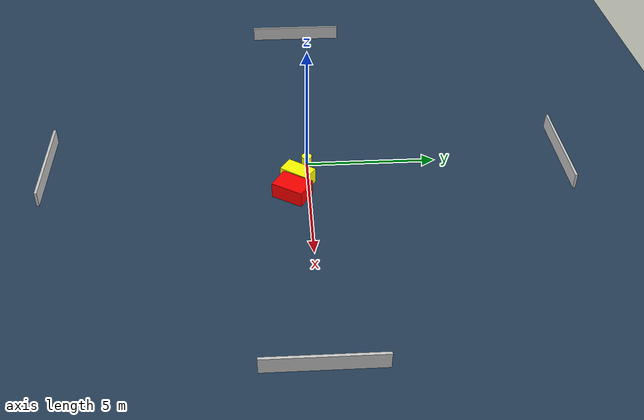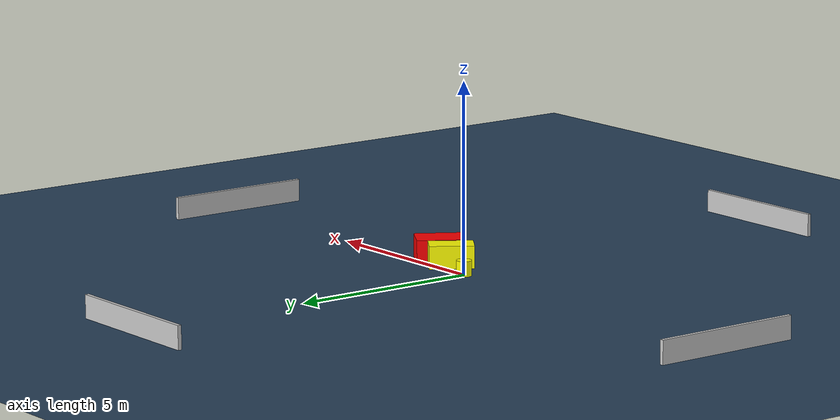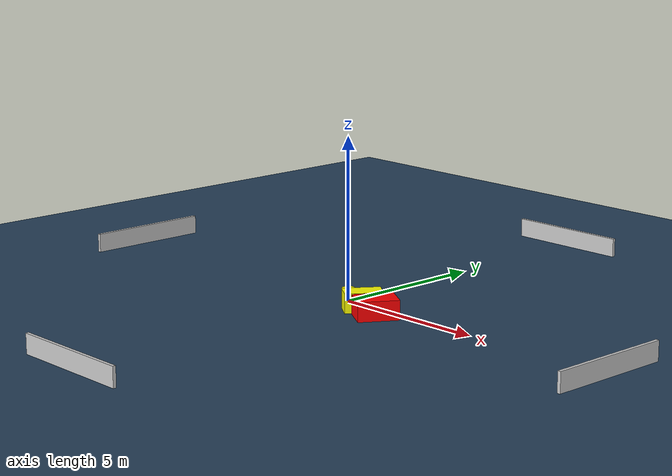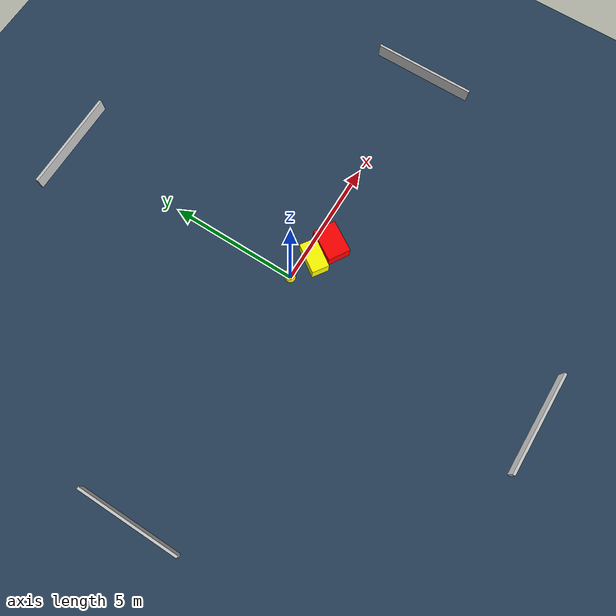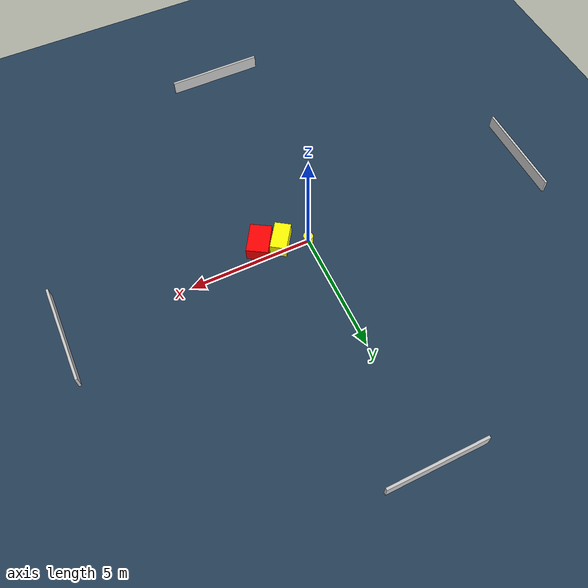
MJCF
<?xml version="1.0" ?>
<mujoco model="generated_environment">
  <option timestep="0.01" integrator="RK4" cone="elliptic"/>
  <default>
    <geom density="1"/>
  </default>
  <asset>
    <texture builtin="gradient" height="3072" name="skybox" rgb1="0.3 0.5 0.7" rgb2="0 0 0" type="skybox" width="512"/>
    <texture builtin="checker" height="300" name="groundplane" rgb1="0.2 0.3 0.4" rgb2="0.1 0.2 0.3" type="2d" width="300"/>
    <material name="groundplane" reflectance="0.2" texrepeat="5 5" texture="groundplane"/>
  </asset>
  <worldbody>
    <light dir="0 0 -1" directional="true" pos="0 0 1.5"/>
    <geom condim="3" friction="0.5 0.005 0.001" material="groundplane" name="floor" pos="0 0 0" size="0 0 0.05" type="plane"/>
    <body name="walls">
      <geom name="wall_1" condim="4" pos="-10.0 0.0 0.3" rgba="0.800000011920929 0.800000011920929 0.800000011920929 1.0" size="0.05 2.0 0.3" type="box"/>
      <geom name="wall_2" condim="4" pos="10.0 0.0 0.3" rgba="0.800000011920929 0.800000011920929 0.800000011920929 1.0" size="0.05 2.0 0.3" type="box"/>
      <geom name="wall_3" condim="4" pos="0.0 -10.0 0.3" rgba="0.800000011920929 0.800000011920929 0.800000011920929 1.0" size="2.0 0.05 0.3" type="box"/>
      <geom name="wall_4" condim="4" pos="0.0 10.0 0.3" rgba="0.800000011920929 0.800000011920929 0.800000011920929 1.0" size="2.0 0.05 0.3" type="box"/>
    </body>
    <body name="robot">
      <joint name="joint_x" type="slide" pos="0 0 0" axis="1 0 0"/>
      <joint name="joint_y" type="slide" pos="0 0 0" axis="0 1 0"/>
      <geom name="robot" type="cylinder" pos="0.0 0.0 0.2" size="0.2 0.2 0.0" mass="5.0" friction="1.0 0.005 0.0001" condim="4" rgba="1.0 1.0 0.0 1.0"/>
    </body>
    <body name="obstacle_1_movable">
      <geom name="obstacle_1_movable" condim="4" pos="1.0276216389676787 -0.38511301706330797 0.3" euler="0 0 55.559027559933924" friction="0.0 0.005 0.001" rgba="1.0 1.0 0.0 1.0" size="0.5834926548389536 0.33391464169678947 0.3" type="box" mass="0.1"/>
      <joint type="free"/>
    </body>
    <body name="obstacle_2_static">
      <geom name="obstacle_2_static" condim="4" pos="1.8463585084132965 -0.6319791458958736 0.3" euler="0 0 238.4335964005739" friction="0.0 0.005 0.001" rgba="1.0 0.0 0.0 1.0" size="0.6245296088859495 0.440999984139008 0.3" type="box"/>
    </body>
  </worldbody>
  <actuator>
    <motor name="actuator_x" joint="joint_x" gear="1" ctrlrange="-1 1"/>
    <motor name="actuator_y" joint="joint_y" gear="1" ctrlrange="-1 1"/>
  </actuator>
</mujoco>
